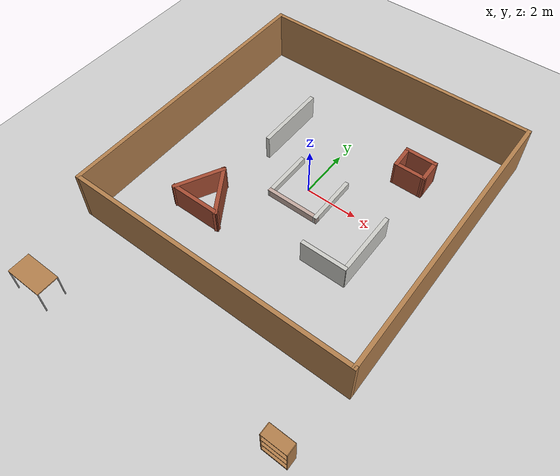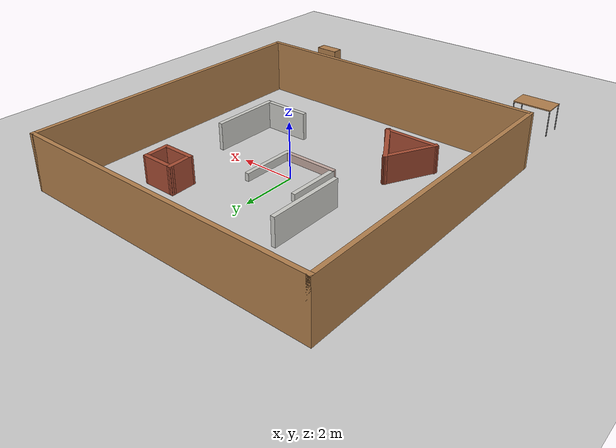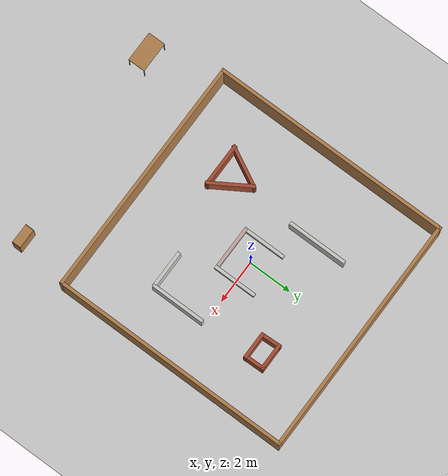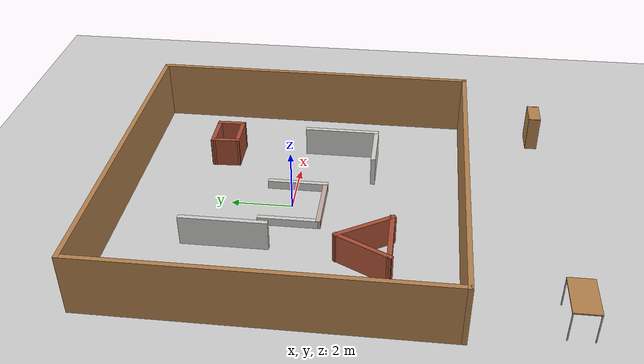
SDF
<sdf version="1.7">
 <world name="default">
  <light name="sun" type="directional">
   <pose>0 0 10 0 -0 0</pose>
   <diffuse>0.8 0.8 0.8 1</diffuse>
   <specular>0.1 0.1 0.1 1</specular>
   <attenuation>
    <range>1000</range>
    <constant>0.9</constant>
    <linear>0.01</linear>
    <quadratic>0.001</quadratic>
   </attenuation>
   <direction>-0.5 0.5 -1</direction>
   <spot><inner_angle>0</inner_angle><outer_angle>0</outer_angle><falloff>0</falloff></spot>
  </light>
  <model name="ground_plane">
   <static>1</static>
   <link name="link">
    <collision name="collision">
     <geometry><plane><normal>0 0 1</normal><size>100 100</size></plane></geometry>
     <surface><friction><ode><mu>100</mu><mu2>50</mu2></ode></friction></surface>
    </collision>
    <visual name="visual">
     <cast_shadows>0</cast_shadows>
     <geometry><plane><normal>0 0 1</normal><size>100 100</size></plane></geometry>
     <material>
      <script><uri>file://media/materials/scripts/gazebo.material</uri><name>Gazebo/Grey</name></script>
     </material>
    </visual>
   </link>
  </model>
  <gravity>0 0 -9.8</gravity>
  <magnetic_field>6e-06 2.3e-05 -4.2e-05</magnetic_field>
  <atmosphere type="adiabatic"/>
  <physics name="default_physics" default="0" type="ode">
   <max_step_size>0.001</max_step_size>
   <real_time_factor>1</real_time_factor>
   <real_time_update_rate>0</real_time_update_rate>
   <ode>
    <solver>
     <thread_position_correction>1</thread_position_correction>
     <island_threads>500</island_threads>
     <type>quick</type>
     <iters>50</iters>
     <sor>1.3</sor>
     <use_dynamic_moi_rescaling>0</use_dynamic_moi_rescaling>
    </solver>
    <constraints>
     <cfm>0</cfm>
     <erp>0.2</erp>
     <contact_max_correcting_vel>100</contact_max_correcting_vel>
     <contact_surface_layer>0.001</contact_surface_layer>
    </constraints>
   </ode>
  </physics>
  <scene><ambient>0.4 0.4 0.4 1</ambient><background>0.7 0.7 0.7 1</background><shadows>0</shadows></scene>
  <spherical_coordinates>
   <surface_model>EARTH_WGS84</surface_model>
   <latitude_deg>0</latitude_deg>
   <longitude_deg>0</longitude_deg>
   <elevation>0</elevation>
   <heading_deg>0</heading_deg>
  </spherical_coordinates>
  <model name="box">
   <link name="Wall_13">
    <pose>-2.155 1.764 0 0 0 -1.5708</pose>
    <visual name="Wall_13_Visual">
     <pose>0 0 0.5 0 -0 0</pose>
     <geometry><box><size>2.75 0.15 1</size></box></geometry>
     <material>
      <script><uri>file://media/materials/scripts/gazebo.material</uri><name>Gazebo/CeilingTiled</name></script>
      <ambient>1 1 1 1</ambient>
      <diffuse>1 1 1 1</diffuse>
      <specular>0 0 0 1</specular>
      <emissive>0 0 0 1</emissive>
     </material>
     <meta><layer>0</layer></meta>
    </visual>
    <collision name="Wall_13_Collision">
     <pose>0 0 0.5 0 -0 0</pose>
     <geometry><box><size>2.75 0.15 1</size></box></geometry>
     <surface>
      <friction>
       <ode><mu>1</mu><mu2>1</mu2><fdir1>0 0 0</fdir1><slip1>0</slip1><slip2>0</slip2></ode>
       <torsional>
        <coefficient>1</coefficient>
        <patch_radius>0</patch_radius>
        <surface_radius>0</surface_radius>
        <use_patch_radius>1</use_patch_radius>
        <ode><slip>0</slip></ode>
       </torsional>
      </friction>
      <bounce><restitution_coefficient>0</restitution_coefficient><threshold>1e+06</threshold></bounce>
      <contact>
       <collide_without_contact>0</collide_without_contact>
       <collide_without_contact_bitmask>1</collide_without_contact_bitmask>
       <collide_bitmask>1</collide_bitmask>
       <ode>
        <soft_cfm>0</soft_cfm>
        <soft_erp>0.2</soft_erp>
        <kp>1e+13</kp>
        <kd>1</kd>
        <max_vel>0.01</max_vel>
        <min_depth>0</min_depth>
       </ode>
       <bullet>
        <split_impulse>1</split_impulse>
        <split_impulse_penetration_threshold>-0.01</split_impulse_penetration_threshold>
        <soft_cfm>0</soft_cfm>
        <soft_erp>0.2</soft_erp>
        <kp>1e+13</kp>
        <kd>1</kd>
       </bullet>
      </contact>
     </surface>
    </collision>
   </link>
   <link name="Wall_15">
    <pose>2.724 3.029 0 0 -0 0</pose>
    <visual name="Wall_15_Visual">
     <pose>0 0 0.5 0 -0 0</pose>
     <geometry><box><size>1.2678 0.15 1</size></box></geometry>
     <material>
      <script><uri>file://media/materials/scripts/gazebo.material</uri><name>Gazebo/Bricks</name></script>
      <ambient>1 1 1 1</ambient>
      <diffuse>1 1 1 1</diffuse>
      <specular>0.2 0.2 0.2 1</specular>
      <emissive>0 0 0 1</emissive>
     </material>
     <meta><layer>0</layer></meta>
    </visual>
    <collision name="Wall_15_Collision">
     <pose>0 0 0.5 0 -0 0</pose>
     <geometry><box><size>1.2678 0.15 1</size></box></geometry>
     <surface>
      <friction>
       <ode><mu>1</mu><mu2>1</mu2><fdir1>0 0 0</fdir1><slip1>0</slip1><slip2>0</slip2></ode>
       <torsional>
        <coefficient>1</coefficient>
        <patch_radius>0</patch_radius>
        <surface_radius>0</surface_radius>
        <use_patch_radius>1</use_patch_radius>
        <ode><slip>0</slip></ode>
       </torsional>
      </friction>
      <bounce><restitution_coefficient>0</restitution_coefficient><threshold>1e+06</threshold></bounce>
      <contact>
       <collide_without_contact>0</collide_without_contact>
       <collide_without_contact_bitmask>1</collide_without_contact_bitmask>
       <collide_bitmask>1</collide_bitmask>
       <ode>
        <soft_cfm>0</soft_cfm>
        <soft_erp>0.2</soft_erp>
        <kp>1e+13</kp>
        <kd>1</kd>
        <max_vel>0.01</max_vel>
        <min_depth>0</min_depth>
       </ode>
       <bullet>
        <split_impulse>1</split_impulse>
        <split_impulse_penetration_threshold>-0.01</split_impulse_penetration_threshold>
        <soft_cfm>0</soft_cfm>
        <soft_erp>0.2</soft_erp>
        <kp>1e+13</kp>
        <kd>1</kd>
       </bullet>
      </contact>
     </surface>
    </collision>
   </link>
   <link name="Wall_16">
    <pose>3.2915 2.6215 0 0 0 -1.54994</pose>
    <visual name="Wall_16_Visual">
     <pose>0 0 0.5 0 -0 0</pose>
     <geometry><box><size>0.965005 0.15 1</size></box></geometry>
     <material>
      <script><uri>file://media/materials/scripts/gazebo.material</uri><name>Gazebo/Bricks</name></script>
      <ambient>1 1 1 1</ambient>
      <diffuse>1 1 1 1</diffuse>
      <specular>0.2 0.2 0.2 1</specular>
      <emissive>0 0 0 1</emissive>
     </material>
     <meta><layer>0</layer></meta>
    </visual>
    <collision name="Wall_16_Collision">
     <pose>0 0 0.5 0 -0 0</pose>
     <geometry><box><size>0.965005 0.15 1</size></box></geometry>
     <surface>
      <friction>
       <ode><mu>1</mu><mu2>1</mu2><fdir1>0 0 0</fdir1><slip1>0</slip1><slip2>0</slip2></ode>
       <torsional>
        <coefficient>1</coefficient>
        <patch_radius>0</patch_radius>
        <surface_radius>0</surface_radius>
        <use_patch_radius>1</use_patch_radius>
        <ode><slip>0</slip></ode>
       </torsional>
      </friction>
      <bounce><restitution_coefficient>0</restitution_coefficient><threshold>1e+06</threshold></bounce>
      <contact>
       <collide_without_contact>0</collide_without_contact>
       <collide_without_contact_bitmask>1</collide_without_contact_bitmask>
       <collide_bitmask>1</collide_bitmask>
       <ode>
        <soft_cfm>0</soft_cfm>
        <soft_erp>0.2</soft_erp>
        <kp>1e+13</kp>
        <kd>1</kd>
        <max_vel>0.01</max_vel>
        <min_depth>0</min_depth>
       </ode>
       <bullet>
        <split_impulse>1</split_impulse>
        <split_impulse_penetration_threshold>-0.01</split_impulse_penetration_threshold>
        <soft_cfm>0</soft_cfm>
        <soft_erp>0.2</soft_erp>
        <kp>1e+13</kp>
        <kd>1</kd>
       </bullet>
      </contact>
     </surface>
    </collision>
   </link>
   <link name="Wall_17">
    <pose>2.75 2.214 0 0 -0 3.14159</pose>
    <visual name="Wall_17_Visual">
     <pose>0 0 0.5 0 -0 0</pose>
     <geometry><box><size>1.25 0.15 1</size></box></geometry>
     <material>
      <script><uri>file://media/materials/scripts/gazebo.material</uri><name>Gazebo/Bricks</name></script>
      <ambient>1 1 1 1</ambient>
      <diffuse>1 1 1 1</diffuse>
      <specular>0.2 0.2 0.2 1</specular>
      <emissive>0 0 0 1</emissive>
     </material>
     <meta><layer>0</layer></meta>
    </visual>
    <collision name="Wall_17_Collision">
     <pose>0 0 0.5 0 -0 0</pose>
     <geometry><box><size>1.25 0.15 1</size></box></geometry>
     <surface>
      <friction>
       <ode><mu>1</mu><mu2>1</mu2><fdir1>0 0 0</fdir1><slip1>0</slip1><slip2>0</slip2></ode>
       <torsional>
        <coefficient>1</coefficient>
        <patch_radius>0</patch_radius>
        <surface_radius>0</surface_radius>
        <use_patch_radius>1</use_patch_radius>
        <ode><slip>0</slip></ode>
       </torsional>
      </friction>
      <bounce><restitution_coefficient>0</restitution_coefficient><threshold>1e+06</threshold></bounce>
      <contact>
       <collide_without_contact>0</collide_without_contact>
       <collide_without_contact_bitmask>1</collide_without_contact_bitmask>
       <collide_bitmask>1</collide_bitmask>
       <ode>
        <soft_cfm>0</soft_cfm>
        <soft_erp>0.2</soft_erp>
        <kp>1e+13</kp>
        <kd>1</kd>
        <max_vel>0.01</max_vel>
        <min_depth>0</min_depth>
       </ode>
       <bullet>
        <split_impulse>1</split_impulse>
        <split_impulse_penetration_threshold>-0.01</split_impulse_penetration_threshold>
        <soft_cfm>0</soft_cfm>
        <soft_erp>0.2</soft_erp>
        <kp>1e+13</kp>
        <kd>1</kd>
       </bullet>
      </contact>
     </surface>
    </collision>
   </link>
   <link name="Wall_18">
    <pose>2.1825 2.6215 0 0 -0 1.61372</pose>
    <visual name="Wall_18_Visual">
     <pose>0 0 0.5 0 -0 0</pose>
     <geometry><box><size>0.965005 0.15 1</size></box></geometry>
     <material>
      <script><uri>file://media/materials/scripts/gazebo.material</uri><name>Gazebo/Bricks</name></script>
      <ambient>1 1 1 1</ambient>
      <diffuse>1 1 1 1</diffuse>
      <specular>0.2 0.2 0.2 1</specular>
      <emissive>0 0 0 1</emissive>
     </material>
     <meta><layer>0</layer></meta>
    </visual>
    <collision name="Wall_18_Collision">
     <pose>0 0 0.5 0 -0 0</pose>
     <geometry><box><size>0.965005 0.15 1</size></box></geometry>
     <surface>
      <friction>
       <ode><mu>1</mu><mu2>1</mu2><fdir1>0 0 0</fdir1><slip1>0</slip1><slip2>0</slip2></ode>
       <torsional>
        <coefficient>1</coefficient>
        <patch_radius>0</patch_radius>
        <surface_radius>0</surface_radius>
        <use_patch_radius>1</use_patch_radius>
        <ode><slip>0</slip></ode>
       </torsional>
      </friction>
      <bounce><restitution_coefficient>0</restitution_coefficient><threshold>1e+06</threshold></bounce>
      <contact>
       <collide_without_contact>0</collide_without_contact>
       <collide_without_contact_bitmask>1</collide_without_contact_bitmask>
       <collide_bitmask>1</collide_bitmask>
       <ode>
        <soft_cfm>0</soft_cfm>
        <soft_erp>0.2</soft_erp>
        <kp>1e+13</kp>
        <kd>1</kd>
        <max_vel>0.01</max_vel>
        <min_depth>0</min_depth>
       </ode>
       <bullet>
        <split_impulse>1</split_impulse>
        <split_impulse_penetration_threshold>-0.01</split_impulse_penetration_threshold>
        <soft_cfm>0</soft_cfm>
        <soft_erp>0.2</soft_erp>
        <kp>1e+13</kp>
        <kd>1</kd>
       </bullet>
      </contact>
     </surface>
    </collision>
   </link>
   <link name="Wall_24">
    <pose>-2.89576 -2.49088 0 0 -0 1.09459</pose>
    <visual name="Wall_24_Visual">
     <pose>0 0 0.5 0 -0 0</pose>
     <geometry><box><size>1.97704 0.15 1</size></box></geometry>
     <material>
      <script><uri>file://media/materials/scripts/gazebo.material</uri><name>Gazebo/Bricks</name></script>
      <ambient>1 1 1 1</ambient>
      <diffuse>1 1 1 1</diffuse>
      <specular>0.2 0.2 0.2 1</specular>
      <emissive>0 0 0 1</emissive>
     </material>
     <meta><layer>0</layer></meta>
    </visual>
    <collision name="Wall_24_Collision">
     <pose>0 0 0.5 0 -0 0</pose>
     <geometry><box><size>1.97704 0.15 1</size></box></geometry>
     <surface>
      <friction>
       <ode><mu>1</mu><mu2>1</mu2><fdir1>0 0 0</fdir1><slip1>0</slip1><slip2>0</slip2></ode>
       <torsional>
        <coefficient>1</coefficient>
        <patch_radius>0</patch_radius>
        <surface_radius>0</surface_radius>
        <use_patch_radius>1</use_patch_radius>
        <ode><slip>0</slip></ode>
       </torsional>
      </friction>
      <bounce><restitution_coefficient>0</restitution_coefficient><threshold>1e+06</threshold></bounce>
      <contact>
       <collide_without_contact>0</collide_without_contact>
       <collide_without_contact_bitmask>1</collide_without_contact_bitmask>
       <collide_bitmask>1</collide_bitmask>
       <ode>
        <soft_cfm>0</soft_cfm>
        <soft_erp>0.2</soft_erp>
        <kp>1e+13</kp>
        <kd>1</kd>
        <max_vel>0.01</max_vel>
        <min_depth>0</min_depth>
       </ode>
       <bullet>
        <split_impulse>1</split_impulse>
        <split_impulse_penetration_threshold>-0.01</split_impulse_penetration_threshold>
        <soft_cfm>0</soft_cfm>
        <soft_erp>0.2</soft_erp>
        <kp>1e+13</kp>
        <kd>1</kd>
       </bullet>
      </contact>
     </surface>
    </collision>
   </link>
   <link name="Wall_25">
    <pose>-1.97077 -2.49088 0 0 0 -1.01325</pose>
    <visual name="Wall_25_Visual">
     <pose>0 0 0.5 0 -0 0</pose>
     <geometry><box><size>2.06356 0.15 1</size></box></geometry>
     <material>
      <script><uri>file://media/materials/scripts/gazebo.material</uri><name>Gazebo/Bricks</name></script>
      <ambient>1 1 1 1</ambient>
      <diffuse>1 1 1 1</diffuse>
      <specular>0.2 0.2 0.2 1</specular>
      <emissive>0 0 0 1</emissive>
     </material>
     <meta><layer>0</layer></meta>
    </visual>
    <collision name="Wall_25_Collision">
     <pose>0 0 0.5 0 -0 0</pose>
     <geometry><box><size>2.06356 0.15 1</size></box></geometry>
     <surface>
      <friction>
       <ode><mu>1</mu><mu2>1</mu2><fdir1>0 0 0</fdir1><slip1>0</slip1><slip2>0</slip2></ode>
       <torsional>
        <coefficient>1</coefficient>
        <patch_radius>0</patch_radius>
        <surface_radius>0</surface_radius>
        <use_patch_radius>1</use_patch_radius>
        <ode><slip>0</slip></ode>
       </torsional>
      </friction>
      <bounce><restitution_coefficient>0</restitution_coefficient><threshold>1e+06</threshold></bounce>
      <contact>
       <collide_without_contact>0</collide_without_contact>
       <collide_without_contact_bitmask>1</collide_without_contact_bitmask>
       <collide_bitmask>1</collide_bitmask>
       <ode>
        <soft_cfm>0</soft_cfm>
        <soft_erp>0.2</soft_erp>
        <kp>1e+13</kp>
        <kd>1</kd>
        <max_vel>0.01</max_vel>
        <min_depth>0</min_depth>
       </ode>
       <bullet>
        <split_impulse>1</split_impulse>
        <split_impulse_penetration_threshold>-0.01</split_impulse_penetration_threshold>
        <soft_cfm>0</soft_cfm>
        <soft_erp>0.2</soft_erp>
        <kp>1e+13</kp>
        <kd>1</kd>
       </bullet>
      </contact>
     </surface>
    </collision>
   </link>
   <link name="Wall_26">
    <pose>-2.38953 -3.28527 0 0 -0 3.14159</pose>
    <visual name="Wall_26_Visual">
     <pose>0 0 0.5 0 -0 0</pose>
     <geometry><box><size>2 0.15 1</size></box></geometry>
     <material>
      <script><uri>file://media/materials/scripts/gazebo.material</uri><name>Gazebo/Bricks</name></script>
      <ambient>1 1 1 1</ambient>
      <diffuse>1 1 1 1</diffuse>
      <specular>0.2 0.2 0.2 1</specular>
      <emissive>0 0 0 1</emissive>
     </material>
     <meta><layer>0</layer></meta>
    </visual>
    <collision name="Wall_26_Collision">
     <pose>0 0 0.5 0 -0 0</pose>
     <geometry><box><size>2 0.15 1</size></box></geometry>
     <surface>
      <friction>
       <ode><mu>1</mu><mu2>1</mu2><fdir1>0 0 0</fdir1><slip1>0</slip1><slip2>0</slip2></ode>
       <torsional>
        <coefficient>1</coefficient>
        <patch_radius>0</patch_radius>
        <surface_radius>0</surface_radius>
        <use_patch_radius>1</use_patch_radius>
        <ode><slip>0</slip></ode>
       </torsional>
      </friction>
      <bounce><restitution_coefficient>0</restitution_coefficient><threshold>1e+06</threshold></bounce>
      <contact>
       <collide_without_contact>0</collide_without_contact>
       <collide_without_contact_bitmask>1</collide_without_contact_bitmask>
       <collide_bitmask>1</collide_bitmask>
       <ode>
        <soft_cfm>0</soft_cfm>
        <soft_erp>0.2</soft_erp>
        <kp>1e+13</kp>
        <kd>1</kd>
        <max_vel>0.01</max_vel>
        <min_depth>0</min_depth>
       </ode>
       <bullet>
        <split_impulse>1</split_impulse>
        <split_impulse_penetration_threshold>-0.01</split_impulse_penetration_threshold>
        <soft_cfm>0</soft_cfm>
        <soft_erp>0.2</soft_erp>
        <kp>1e+13</kp>
        <kd>1</kd>
       </bullet>
      </contact>
     </surface>
    </collision>
   </link>
   <link name="Wall_28">
    <pose>2.38813 -2.48047 0 0 -0 0</pose>
    <visual name="Wall_28_Visual">
     <pose>0 0 0.5 0 -0 0</pose>
     <geometry><box><size>1.75 0.15 1</size></box></geometry>
     <material>
      <script><uri>file://media/materials/scripts/gazebo.material</uri><name>Gazebo/CeilingTiled</name></script>
      <ambient>1 1 1 1</ambient>
      <diffuse>1 1 1 1</diffuse>
      <specular>0 0 0 1</specular>
      <emissive>0 0 0 1</emissive>
     </material>
     <meta><layer>0</layer></meta>
    </visual>
    <collision name="Wall_28_Collision">
     <pose>0 0 0.5 0 -0 0</pose>
     <geometry><box><size>1.75 0.15 1</size></box></geometry>
     <surface>
      <friction>
       <ode><mu>1</mu><mu2>1</mu2><fdir1>0 0 0</fdir1><slip1>0</slip1><slip2>0</slip2></ode>
       <torsional>
        <coefficient>1</coefficient>
        <patch_radius>0</patch_radius>
        <surface_radius>0</surface_radius>
        <use_patch_radius>1</use_patch_radius>
        <ode><slip>0</slip></ode>
       </torsional>
      </friction>
      <bounce><restitution_coefficient>0</restitution_coefficient><threshold>1e+06</threshold></bounce>
      <contact>
       <collide_without_contact>0</collide_without_contact>
       <collide_without_contact_bitmask>1</collide_without_contact_bitmask>
       <collide_bitmask>1</collide_bitmask>
       <ode>
        <soft_cfm>0</soft_cfm>
        <soft_erp>0.2</soft_erp>
        <kp>1e+13</kp>
        <kd>1</kd>
        <max_vel>0.01</max_vel>
        <min_depth>0</min_depth>
       </ode>
       <bullet>
        <split_impulse>1</split_impulse>
        <split_impulse_penetration_threshold>-0.01</split_impulse_penetration_threshold>
        <soft_cfm>0</soft_cfm>
        <soft_erp>0.2</soft_erp>
        <kp>1e+13</kp>
        <kd>1</kd>
       </bullet>
      </contact>
     </surface>
    </collision>
   </link>
   <link name="Wall_29">
    <pose>3.20562 -1.28798 0 0 -0 1.5708</pose>
    <visual name="Wall_29_Visual">
     <pose>0 0 0.5 0 -0 0</pose>
     <geometry><box><size>2.5 0.15 1</size></box></geometry>
     <material>
      <script><uri>file://media/materials/scripts/gazebo.material</uri><name>Gazebo/CeilingTiled</name></script>
      <ambient>1 1 1 1</ambient>
      <diffuse>1 1 1 1</diffuse>
      <specular>0 0 0 1</specular>
      <emissive>0 0 0 1</emissive>
     </material>
     <meta><layer>0</layer></meta>
    </visual>
    <collision name="Wall_29_Collision">
     <pose>0 0 0.5 0 -0 0</pose>
     <geometry><box><size>2.5 0.15 1</size></box></geometry>
     <surface>
      <friction>
       <ode><mu>1</mu><mu2>1</mu2><fdir1>0 0 0</fdir1><slip1>0</slip1><slip2>0</slip2></ode>
       <torsional>
        <coefficient>1</coefficient>
        <patch_radius>0</patch_radius>
        <surface_radius>0</surface_radius>
        <use_patch_radius>1</use_patch_radius>
        <ode><slip>0</slip></ode>
       </torsional>
      </friction>
      <bounce><restitution_coefficient>0</restitution_coefficient><threshold>1e+06</threshold></bounce>
      <contact>
       <collide_without_contact>0</collide_without_contact>
       <collide_without_contact_bitmask>1</collide_without_contact_bitmask>
       <collide_bitmask>1</collide_bitmask>
       <ode>
        <soft_cfm>0</soft_cfm>
        <soft_erp>0.2</soft_erp>
        <kp>1e+13</kp>
        <kd>1</kd>
        <max_vel>0.01</max_vel>
        <min_depth>0</min_depth>
       </ode>
       <bullet>
        <split_impulse>1</split_impulse>
        <split_impulse_penetration_threshold>-0.01</split_impulse_penetration_threshold>
        <soft_cfm>0</soft_cfm>
        <soft_erp>0.2</soft_erp>
        <kp>1e+13</kp>
        <kd>1</kd>
       </bullet>
      </contact>
     </surface>
    </collision>
   </link>
   <link name="Wall_6">
    <pose>0 5.425 0 0 -0 0</pose>
    <visual name="Wall_6_Visual">
     <pose>0 0 1 0 -0 0</pose>
     <geometry><box><size>11 0.15 2</size></box></geometry>
     <material>
      <script><uri>file://media/materials/scripts/gazebo.material</uri><name>Gazebo/Wood</name></script>
      <ambient>1 1 1 1</ambient>
      <diffuse>1 1 1 1</diffuse>
      <specular>0.2 0.2 0.2 1</specular>
      <emissive>0 0 0 1</emissive>
     </material>
     <meta><layer>0</layer></meta>
    </visual>
    <collision name="Wall_6_Collision">
     <pose>0 0 1 0 -0 0</pose>
     <geometry><box><size>11 0.15 2</size></box></geometry>
     <surface>
      <friction>
       <ode><mu>1</mu><mu2>1</mu2><fdir1>0 0 0</fdir1><slip1>0</slip1><slip2>0</slip2></ode>
       <torsional>
        <coefficient>1</coefficient>
        <patch_radius>0</patch_radius>
        <surface_radius>0</surface_radius>
        <use_patch_radius>1</use_patch_radius>
        <ode><slip>0</slip></ode>
       </torsional>
      </friction>
      <bounce><restitution_coefficient>0</restitution_coefficient><threshold>1e+06</threshold></bounce>
      <contact>
       <collide_without_contact>0</collide_without_contact>
       <collide_without_contact_bitmask>1</collide_without_contact_bitmask>
       <collide_bitmask>1</collide_bitmask>
       <ode>
        <soft_cfm>0</soft_cfm>
        <soft_erp>0.2</soft_erp>
        <kp>1e+13</kp>
        <kd>1</kd>
        <max_vel>0.01</max_vel>
        <min_depth>0</min_depth>
       </ode>
       <bullet>
        <split_impulse>1</split_impulse>
        <split_impulse_penetration_threshold>-0.01</split_impulse_penetration_threshold>
        <soft_cfm>0</soft_cfm>
        <soft_erp>0.2</soft_erp>
        <kp>1e+13</kp>
        <kd>1</kd>
       </bullet>
      </contact>
     </surface>
    </collision>
   </link>
   <link name="Wall_7">
    <pose>5.425 0 0 0 0 -1.5708</pose>
    <visual name="Wall_7_Visual">
     <pose>0 0 1 0 -0 0</pose>
     <geometry><box><size>11 0.15 2</size></box></geometry>
     <material>
      <script><uri>file://media/materials/scripts/gazebo.material</uri><name>Gazebo/Wood</name></script>
      <ambient>1 1 1 1</ambient>
      <diffuse>1 1 1 1</diffuse>
      <specular>0.2 0.2 0.2 1</specular>
      <emissive>0 0 0 1</emissive>
     </material>
     <meta><layer>0</layer></meta>
    </visual>
    <collision name="Wall_7_Collision">
     <pose>0 0 1 0 -0 0</pose>
     <geometry><box><size>11 0.15 2</size></box></geometry>
     <surface>
      <friction>
       <ode><mu>1</mu><mu2>1</mu2><fdir1>0 0 0</fdir1><slip1>0</slip1><slip2>0</slip2></ode>
       <torsional>
        <coefficient>1</coefficient>
        <patch_radius>0</patch_radius>
        <surface_radius>0</surface_radius>
        <use_patch_radius>1</use_patch_radius>
        <ode><slip>0</slip></ode>
       </torsional>
      </friction>
      <bounce><restitution_coefficient>0</restitution_coefficient><threshold>1e+06</threshold></bounce>
      <contact>
       <collide_without_contact>0</collide_without_contact>
       <collide_without_contact_bitmask>1</collide_without_contact_bitmask>
       <collide_bitmask>1</collide_bitmask>
       <ode>
        <soft_cfm>0</soft_cfm>
        <soft_erp>0.2</soft_erp>
        <kp>1e+13</kp>
        <kd>1</kd>
        <max_vel>0.01</max_vel>
        <min_depth>0</min_depth>
       </ode>
       <bullet>
        <split_impulse>1</split_impulse>
        <split_impulse_penetration_threshold>-0.01</split_impulse_penetration_threshold>
        <soft_cfm>0</soft_cfm>
        <soft_erp>0.2</soft_erp>
        <kp>1e+13</kp>
        <kd>1</kd>
       </bullet>
      </contact>
     </surface>
    </collision>
   </link>
   <link name="Wall_8">
    <pose>0 -5.425 0 0 -0 3.14159</pose>
    <visual name="Wall_8_Visual">
     <pose>0 0 1 0 -0 0</pose>
     <geometry><box><size>11 0.15 2</size></box></geometry>
     <material>
      <script><uri>file://media/materials/scripts/gazebo.material</uri><name>Gazebo/Wood</name></script>
      <ambient>1 1 1 1</ambient>
      <diffuse>1 1 1 1</diffuse>
      <specular>0.2 0.2 0.2 1</specular>
      <emissive>0 0 0 1</emissive>
     </material>
     <meta><layer>0</layer></meta>
    </visual>
    <collision name="Wall_8_Collision">
     <pose>0 0 1 0 -0 0</pose>
     <geometry><box><size>11 0.15 2</size></box></geometry>
     <surface>
      <friction>
       <ode><mu>1</mu><mu2>1</mu2><fdir1>0 0 0</fdir1><slip1>0</slip1><slip2>0</slip2></ode>
       <torsional>
        <coefficient>1</coefficient>
        <patch_radius>0</patch_radius>
        <surface_radius>0</surface_radius>
        <use_patch_radius>1</use_patch_radius>
        <ode><slip>0</slip></ode>
       </torsional>
      </friction>
      <bounce><restitution_coefficient>0</restitution_coefficient><threshold>1e+06</threshold></bounce>
      <contact>
       <collide_without_contact>0</collide_without_contact>
       <collide_without_contact_bitmask>1</collide_without_contact_bitmask>
       <collide_bitmask>1</collide_bitmask>
       <ode>
        <soft_cfm>0</soft_cfm>
        <soft_erp>0.2</soft_erp>
        <kp>1e+13</kp>
        <kd>1</kd>
        <max_vel>0.01</max_vel>
        <min_depth>0</min_depth>
       </ode>
       <bullet>
        <split_impulse>1</split_impulse>
        <split_impulse_penetration_threshold>-0.01</split_impulse_penetration_threshold>
        <soft_cfm>0</soft_cfm>
        <soft_erp>0.2</soft_erp>
        <kp>1e+13</kp>
        <kd>1</kd>
       </bullet>
      </contact>
     </surface>
    </collision>
   </link>
   <link name="Wall_9">
    <pose>-5.425 0 0 0 -0 1.5708</pose>
    <visual name="Wall_9_Visual">
     <pose>0 0 1 0 -0 0</pose>
     <geometry><box><size>11 0.15 2</size></box></geometry>
     <material>
      <script><uri>file://media/materials/scripts/gazebo.material</uri><name>Gazebo/Wood</name></script>
      <ambient>1 1 1 1</ambient>
      <diffuse>1 1 1 1</diffuse>
      <specular>0.2 0.2 0.2 1</specular>
      <emissive>0 0 0 1</emissive>
     </material>
     <meta><layer>0</layer></meta>
    </visual>
    <collision name="Wall_9_Collision">
     <pose>0 0 1 0 -0 0</pose>
     <geometry><box><size>11 0.15 2</size></box></geometry>
     <surface>
      <friction>
       <ode><mu>1</mu><mu2>1</mu2><fdir1>0 0 0</fdir1><slip1>0</slip1><slip2>0</slip2></ode>
       <torsional>
        <coefficient>1</coefficient>
        <patch_radius>0</patch_radius>
        <surface_radius>0</surface_radius>
        <use_patch_radius>1</use_patch_radius>
        <ode><slip>0</slip></ode>
       </torsional>
      </friction>
      <bounce><restitution_coefficient>0</restitution_coefficient><threshold>1e+06</threshold></bounce>
      <contact>
       <collide_without_contact>0</collide_without_contact>
       <collide_without_contact_bitmask>1</collide_without_contact_bitmask>
       <collide_bitmask>1</collide_bitmask>
       <ode>
        <soft_cfm>0</soft_cfm>
        <soft_erp>0.2</soft_erp>
        <kp>1e+13</kp>
        <kd>1</kd>
        <max_vel>0.01</max_vel>
        <min_depth>0</min_depth>
       </ode>
       <bullet>
        <split_impulse>1</split_impulse>
        <split_impulse_penetration_threshold>-0.01</split_impulse_penetration_threshold>
        <soft_cfm>0</soft_cfm>
        <soft_erp>0.2</soft_erp>
        <kp>1e+13</kp>
        <kd>1</kd>
       </bullet>
      </contact>
     </surface>
    </collision>
   </link>
   <static>1</static>
  </model>
  <model name="bookshelf">
   <static>1</static>
   <link name="link">
    <inertial><mass>1</mass></inertial>
    <collision name="back">
     <pose>0 0.005 0.6 0 -0 0</pose>
     <geometry><box><size>0.9 0.01 1.2</size></box></geometry>
    </collision>
    <visual name="visual1">
     <pose>0 0.005 0.6 0 -0 0</pose>
     <geometry><box><size>0.9 0.01 1.2</size></box></geometry>
     <material>
      <script><uri>file://media/materials/scripts/gazebo.material</uri><name>Gazebo/Wood</name></script>
     </material>
    </visual>
    <collision name="left_side">
     <pose>0.45 -0.195 0.6 0 -0 0</pose>
     <geometry><box><size>0.02 0.4 1.2</size></box></geometry>
    </collision>
    <visual name="visual2">
     <pose>0.45 -0.195 0.6 0 -0 0</pose>
     <geometry><box><size>0.02 0.4 1.2</size></box></geometry>
     <material>
      <script><uri>file://media/materials/scripts/gazebo.material</uri><name>Gazebo/Wood</name></script>
     </material>
    </visual>
    <collision name="right_side">
     <pose>-0.45 -0.195 0.6 0 -0 0</pose>
     <geometry><box><size>0.02 0.4 1.2</size></box></geometry>
    </collision>
    <visual name="visual3">
     <pose>-0.45 -0.195 0.6 0 -0 0</pose>
     <geometry><box><size>0.02 0.4 1.2</size></box></geometry>
     <material>
      <script><uri>file://media/materials/scripts/gazebo.material</uri><name>Gazebo/Wood</name></script>
     </material>
    </visual>
    <collision name="bottom">
     <pose>0 -0.195 0.03 0 -0 0</pose>
     <geometry><box><size>0.88 0.4 0.06</size></box></geometry>
    </collision>
    <visual name="visual4">
     <pose>0 -0.195 0.03 0 -0 0</pose>
     <geometry><box><size>0.88 0.4 0.06</size></box></geometry>
     <material>
      <script><uri>file://media/materials/scripts/gazebo.material</uri><name>Gazebo/Wood</name></script>
     </material>
    </visual>
    <collision name="top">
     <pose>0 -0.195 1.19 0 -0 0</pose>
     <geometry><box><size>0.88 0.4 0.02</size></box></geometry>
    </collision>
    <visual name="visual5">
     <pose>0 -0.195 1.19 0 -0 0</pose>
     <geometry><box><size>0.88 0.4 0.02</size></box></geometry>
     <material>
      <script><uri>file://media/materials/scripts/gazebo.material</uri><name>Gazebo/Wood</name></script>
     </material>
    </visual>
    <collision name="low_shelf">
     <pose>0 -0.195 0.43 0 -0 0</pose>
     <geometry><box><size>0.88 0.4 0.02</size></box></geometry>
    </collision>
    <visual name="visual6">
     <pose>0 -0.195 0.43 0 -0 0</pose>
     <geometry><box><size>0.88 0.4 0.02</size></box></geometry>
     <material>
      <script><uri>file://media/materials/scripts/gazebo.material</uri><name>Gazebo/Wood</name></script>
     </material>
    </visual>
    <collision name="high_shelf">
     <pose>0 -0.195 0.8 0 -0 0</pose>
     <geometry><box><size>0.88 0.4 0.02</size></box></geometry>
    </collision>
    <visual name="visual7">
     <pose>0 -0.195 0.8 0 -0 0</pose>
     <geometry><box><size>0.88 0.4 0.02</size></box></geometry>
     <material>
      <script><uri>file://media/materials/scripts/gazebo.material</uri><name>Gazebo/Wood</name></script>
     </material>
    </visual>
   </link>
   <pose>4.78412 -7.73836 0 0 -0 0</pose>
  </model>
  <model name="table">
   <static>0</static>
   <link name="link">
    <collision name="surface">
     <pose>0 0 1 0 -0 0</pose>
     <geometry><box><size>1.5 0.8 0.03</size></box></geometry>
     <surface><friction><ode><mu>0.6</mu><mu2>0.6</mu2></ode></friction></surface>
    </collision>
    <visual name="visual1">
     <pose>0 0 1 0 -0 0</pose>
     <geometry><box><size>1.4 0.8 0.04</size></box></geometry>
     <material>
      <script><uri>file://media/materials/scripts/gazebo.material</uri><name>Gazebo/Wood</name></script>
     </material>
    </visual>
    <collision name="front_left_leg">
     <pose>0.68 0.38 0.5 0 -0 0</pose>
     <geometry><cylinder><radius>0.02</radius><length>1</length></cylinder></geometry>
    </collision>
    <visual name="front_left_leg">
     <pose>0.68 0.38 0.5 0 -0 0</pose>
     <geometry><cylinder><radius>0.02</radius><length>1</length></cylinder></geometry>
     <material>
      <script><uri>file://media/materials/scripts/gazebo.material</uri><name>Gazebo/Grey</name></script>
     </material>
    </visual>
    <collision name="front_right_leg">
     <pose>0.68 -0.38 0.5 0 -0 0</pose>
     <geometry><cylinder><radius>0.02</radius><length>1</length></cylinder></geometry>
    </collision>
    <visual name="front_right_leg">
     <pose>0.68 -0.38 0.5 0 -0 0</pose>
     <geometry><cylinder><radius>0.02</radius><length>1</length></cylinder></geometry>
     <material>
      <script><uri>file://media/materials/scripts/gazebo.material</uri><name>Gazebo/Grey</name></script>
     </material>
    </visual>
    <collision name="back_right_leg">
     <pose>-0.68 -0.38 0.5 0 -0 0</pose>
     <geometry><cylinder><radius>0.02</radius><length>1</length></cylinder></geometry>
    </collision>
    <visual name="back_right_leg">
     <pose>-0.68 -0.38 0.5 0 -0 0</pose>
     <geometry><cylinder><radius>0.02</radius><length>1</length></cylinder></geometry>
     <material>
      <script><uri>file://media/materials/scripts/gazebo.material</uri><name>Gazebo/Grey</name></script>
     </material>
    </visual>
    <collision name="back_left_leg">
     <pose>-0.68 0.38 0.5 0 -0 0</pose>
     <geometry><cylinder><radius>0.02</radius><length>1</length></cylinder></geometry>
    </collision>
    <visual name="back_left_leg">
     <pose>-0.68 0.38 0.5 0 -0 0</pose>
     <geometry><cylinder><radius>0.02</radius><length>1</length></cylinder></geometry>
     <material>
      <script><uri>file://media/materials/scripts/gazebo.material</uri><name>Gazebo/Grey</name></script>
     </material>
    </visual>
    <inertial>
     <inertia><ixx>1</ixx><ixy>0</ixy><ixz>0</ixz><iyy>1</iyy><iyz>0</iyz><izz>1</izz></inertia>
     <mass>1</mass>
    </inertial>
   </link>
   <pose>-4.34248 -8.53295 -2e-06 0 -0 0</pose>
  </model>
  <model name="wall_0">
   <link name="Wall_5">
    <pose>0 -0.92481 0 0 0 -0.005076</pose>
    <inertial>
     <inertia><ixx>0</ixx><ixy>0</ixy><ixz>0</ixz><iyy>0</iyy><iyz>0</iyz><izz>0</izz></inertia>
     <mass>0</mass>
    </inertial>
    <visual name="Wall_5_Visual">
     <pose>0 0 1.25 0 -0 0</pose>
     <geometry><box><size>2.12003 0.15 0.438517</size></box></geometry>
     <material>
      <script><uri>file://media/materials/scripts/gazebo.material</uri><name>Gazebo/Grey</name></script>
      <ambient>0.760784 0.662745 0.627451 1</ambient>
      <shader type="pixel"/>
     </material>
     <meta><layer>0</layer></meta>
    </visual>
    <collision name="Wall_5_Collision">
     <pose>0 0 1.25 0 -0 0</pose>
     <geometry><box><size>2.12003 0.15 0.438517</size></box></geometry>
     <surface>
      <friction>
       <ode><mu>1</mu><mu2>1</mu2><fdir1>0 0 0</fdir1><slip1>0</slip1><slip2>0</slip2></ode>
       <torsional>
        <coefficient>1</coefficient>
        <patch_radius>0</patch_radius>
        <surface_radius>0</surface_radius>
        <use_patch_radius>1</use_patch_radius>
        <ode><slip>0</slip></ode>
       </torsional>
      </friction>
      <bounce><restitution_coefficient>0</restitution_coefficient><threshold>1e+06</threshold></bounce>
      <contact>
       <collide_without_contact>0</collide_without_contact>
       <collide_without_contact_bitmask>1</collide_without_contact_bitmask>
       <collide_bitmask>1</collide_bitmask>
       <ode>
        <soft_cfm>0</soft_cfm>
        <soft_erp>0.2</soft_erp>
        <kp>1e+13</kp>
        <kd>1</kd>
        <max_vel>0.01</max_vel>
        <min_depth>0</min_depth>
       </ode>
       <bullet>
        <split_impulse>1</split_impulse>
        <split_impulse_penetration_threshold>-0.01</split_impulse_penetration_threshold>
        <soft_cfm>0</soft_cfm>
        <soft_erp>0.2</soft_erp>
        <kp>1e+13</kp>
        <kd>1</kd>
       </bullet>
      </contact>
     </surface>
    </collision>
   </link>
   <link name="Wall_6">
    <pose>0.985 -0.00481 0 0 -0 1.5708</pose>
    <inertial>
     <inertia><ixx>0</ixx><ixy>0</ixy><ixz>0</ixz><iyy>0</iyy><iyz>0</iyz><izz>0</izz></inertia>
     <mass>0</mass>
    </inertial>
    <visual name="Wall_6_Visual">
     <pose>0 0 1.25 0 -0 0</pose>
     <geometry><box><size>2 0.15 0.440657</size></box></geometry>
     <material>
      <script><uri>file://media/materials/scripts/gazebo.material</uri><name>Gazebo/CeilingTiled</name></script>
      <ambient>0.760784 0.662745 0.627451 1</ambient>
      <shader type="pixel"/>
     </material>
     <meta><layer>0</layer></meta>
    </visual>
    <collision name="Wall_6_Collision">
     <pose>0 0 1.25 0 -0 0</pose>
     <geometry><box><size>2 0.15 0.440657</size></box></geometry>
     <surface>
      <friction>
       <ode><mu>1</mu><mu2>1</mu2><fdir1>0 0 0</fdir1><slip1>0</slip1><slip2>0</slip2></ode>
       <torsional>
        <coefficient>1</coefficient>
        <patch_radius>0</patch_radius>
        <surface_radius>0</surface_radius>
        <use_patch_radius>1</use_patch_radius>
        <ode><slip>0</slip></ode>
       </torsional>
      </friction>
      <bounce><restitution_coefficient>0</restitution_coefficient><threshold>1e+06</threshold></bounce>
      <contact>
       <collide_without_contact>0</collide_without_contact>
       <collide_without_contact_bitmask>1</collide_without_contact_bitmask>
       <collide_bitmask>1</collide_bitmask>
       <ode>
        <soft_cfm>0</soft_cfm>
        <soft_erp>0.2</soft_erp>
        <kp>1e+13</kp>
        <kd>1</kd>
        <max_vel>0.01</max_vel>
        <min_depth>0</min_depth>
       </ode>
       <bullet>
        <split_impulse>1</split_impulse>
        <split_impulse_penetration_threshold>-0.01</split_impulse_penetration_threshold>
        <soft_cfm>0</soft_cfm>
        <soft_erp>0.2</soft_erp>
        <kp>1e+13</kp>
        <kd>1</kd>
       </bullet>
      </contact>
     </surface>
    </collision>
   </link>
   <link name="Wall_8">
    <pose>-0.985 0.00519 0 0 -0 1.5708</pose>
    <inertial>
     <inertia><ixx>0</ixx><ixy>0</ixy><ixz>0</ixz><iyy>0</iyy><iyz>0</iyz><izz>0</izz></inertia>
     <mass>0</mass>
    </inertial>
    <visual name="Wall_8_Visual">
     <pose>0 0 1.25 0 -0 0</pose>
     <geometry><box><size>2 0.15 0.412628</size></box></geometry>
     <material>
      <script><uri>file://media/materials/scripts/gazebo.material</uri><name>Gazebo/CeilingTiled</name></script>
      <ambient>0.760784 0.662745 0.627451 1</ambient>
      <shader type="pixel"/>
     </material>
     <meta><layer>0</layer></meta>
    </visual>
    <collision name="Wall_8_Collision">
     <pose>0 0 1.25 0 -0 0</pose>
     <geometry><box><size>2 0.15 0.412628</size></box></geometry>
     <surface>
      <friction>
       <ode><mu>1</mu><mu2>1</mu2><fdir1>0 0 0</fdir1><slip1>0</slip1><slip2>0</slip2></ode>
       <torsional>
        <coefficient>1</coefficient>
        <patch_radius>0</patch_radius>
        <surface_radius>0</surface_radius>
        <use_patch_radius>1</use_patch_radius>
        <ode><slip>0</slip></ode>
       </torsional>
      </friction>
      <bounce><restitution_coefficient>0</restitution_coefficient><threshold>1e+06</threshold></bounce>
      <contact>
       <collide_without_contact>0</collide_without_contact>
       <collide_without_contact_bitmask>1</collide_without_contact_bitmask>
       <collide_bitmask>1</collide_bitmask>
       <ode>
        <soft_cfm>0</soft_cfm>
        <soft_erp>0.2</soft_erp>
        <kp>1e+13</kp>
        <kd>1</kd>
        <max_vel>0.01</max_vel>
        <min_depth>0</min_depth>
       </ode>
       <bullet>
        <split_impulse>1</split_impulse>
        <split_impulse_penetration_threshold>-0.01</split_impulse_penetration_threshold>
        <soft_cfm>0</soft_cfm>
        <soft_erp>0.2</soft_erp>
        <kp>1e+13</kp>
        <kd>1</kd>
       </bullet>
      </contact>
     </surface>
    </collision>
   </link>
   <static>1</static>
   <pose>0.025 -0.04019 -1.2 0 -0 0</pose>
  </model>
 </world>
</sdf>
